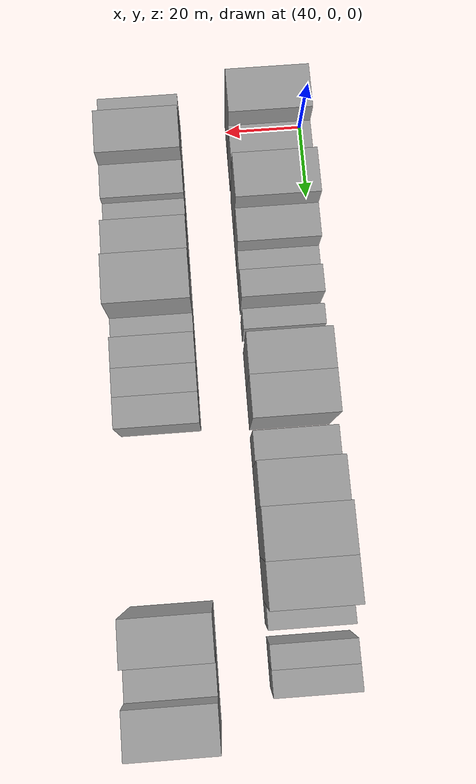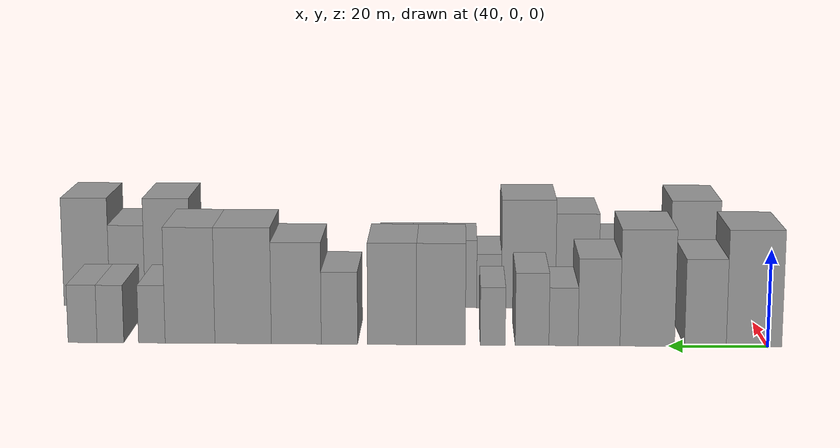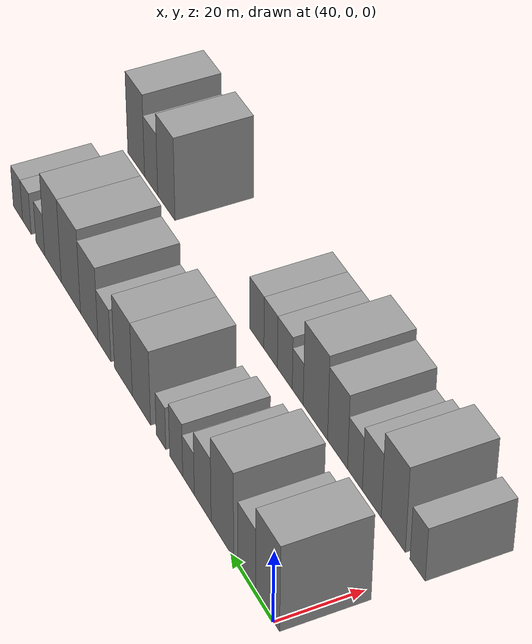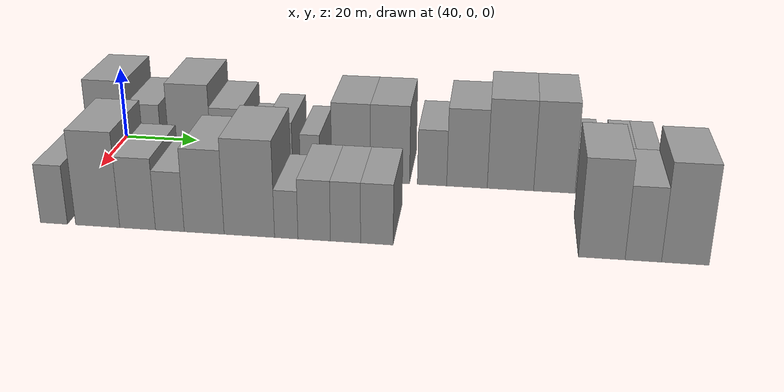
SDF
<sdf version="1.6">
 <world name="default">
  <model name="building_31">
   <static>1</static>
   <pose>50.0000 2.8149 0 0.000000 0.000000 0.000000</pose>
   <link name="link">
    <pose>0 0 12.00 0 0 0</pose>
    <collision name="collision"><geometry><box><size>20.0000 11.1670 24.0000</size></box></geometry></collision>
    <visual name="visual">
     <cast_shadows>0</cast_shadows>
     <geometry><box><size>20.0000 11.1670 24.0000</size></box></geometry>
     <material>
      <script>
       <uri>model://grey_wall/materials/scripts</uri>
       <uri>model://grey_wall/materials/textures</uri>
       <name>vrc/grey_wall</name>
      </script>
     </material>
    </visual>
   </link>
  </model>
  <model name="building_32">
   <static>1</static>
   <pose>50.0000 12.5977 0 0.000000 0.000000 0.000000</pose>
   <link name="link">
    <pose>0 0 9.00 0 0 0</pose>
    <collision name="collision"><geometry><box><size>20.0000 8.3987 18.0000</size></box></geometry></collision>
    <visual name="visual">
     <cast_shadows>0</cast_shadows>
     <geometry><box><size>20.0000 8.3987 18.0000</size></box></geometry>
     <material>
      <script>
       <uri>model://grey_wall/materials/scripts</uri>
       <uri>model://grey_wall/materials/textures</uri>
       <name>vrc/grey_wall</name>
      </script>
     </material>
    </visual>
   </link>
  </model>
  <model name="building_33">
   <static>1</static>
   <pose>50.0000 24.3071 0 0.000000 0.000000 0.000000</pose>
   <link name="link">
    <pose>0 0 12.00 0 0 0</pose>
    <collision name="collision"><geometry><box><size>20.0000 11.0200 24.0000</size></box></geometry></collision>
    <visual name="visual">
     <cast_shadows>0</cast_shadows>
     <geometry><box><size>20.0000 11.0200 24.0000</size></box></geometry>
     <material>
      <script>
       <uri>model://grey_wall/materials/scripts</uri>
       <uri>model://grey_wall/materials/textures</uri>
       <name>vrc/grey_wall</name>
      </script>
     </material>
    </visual>
   </link>
  </model>
  <model name="building_34">
   <static>1</static>
   <pose>50.0000 34.0459 0 0.000000 0.000000 0.000000</pose>
   <link name="link">
    <pose>0 0 9.00 0 0 0</pose>
    <collision name="collision"><geometry><box><size>20.0000 8.4576 18.0000</size></box></geometry></collision>
    <visual name="visual">
     <cast_shadows>0</cast_shadows>
     <geometry><box><size>20.0000 8.4576 18.0000</size></box></geometry>
     <material>
      <script>
       <uri>model://grey_wall/materials/scripts</uri>
       <uri>model://grey_wall/materials/textures</uri>
       <name>vrc/grey_wall</name>
      </script>
     </material>
    </visual>
   </link>
  </model>
  <model name="building_35">
   <static>1</static>
   <pose>50.0000 41.2181 0 0.000000 0.000000 0.000000</pose>
   <link name="link">
    <pose>0 0 6.00 0 0 0</pose>
    <collision name="collision"><geometry><box><size>20.0000 5.8868 12.0000</size></box></geometry></collision>
    <visual name="visual">
     <cast_shadows>0</cast_shadows>
     <geometry><box><size>20.0000 5.8868 12.0000</size></box></geometry>
     <material>
      <script>
       <uri>model://grey_wall/materials/scripts</uri>
       <uri>model://grey_wall/materials/textures</uri>
       <name>vrc/grey_wall</name>
      </script>
     </material>
    </visual>
   </link>
  </model>
  <model name="building_36">
   <static>1</static>
   <pose>50.0000 47.5665 0 0.000000 0.000000 0.000000</pose>
   <link name="link">
    <pose>0 0 7.50 0 0 0</pose>
    <collision name="collision"><geometry><box><size>20.0000 6.8100 15.0000</size></box></geometry></collision>
    <visual name="visual">
     <cast_shadows>0</cast_shadows>
     <geometry><box><size>20.0000 6.8100 15.0000</size></box></geometry>
     <material>
      <script>
       <uri>model://grey_wall/materials/scripts</uri>
       <uri>model://grey_wall/materials/textures</uri>
       <name>vrc/grey_wall</name>
      </script>
     </material>
    </visual>
   </link>
  </model>
  <model name="building_37">
   <static>1</static>
   <pose>50.0000 55.5154 0 0.000000 0.000000 0.000000</pose>
   <link name="link">
    <pose>0 0 6.00 0 0 0</pose>
    <collision name="collision"><geometry><box><size>20.0000 5.0878 12.0000</size></box></geometry></collision>
    <visual name="visual">
     <cast_shadows>0</cast_shadows>
     <geometry><box><size>20.0000 5.0878 12.0000</size></box></geometry>
     <material>
      <script>
       <uri>model://grey_wall/materials/scripts</uri>
       <uri>model://grey_wall/materials/textures</uri>
       <name>vrc/grey_wall</name>
      </script>
     </material>
    </visual>
   </link>
  </model>
  <model name="building_38">
   <static>1</static>
   <pose>50.0000 66.0061 0 0.000000 0.000000 0.000000</pose>
   <link name="link">
    <pose>0 0 10.50 0 0 0</pose>
    <collision name="collision"><geometry><box><size>20.0000 9.8937 21.0000</size></box></geometry></collision>
    <visual name="visual">
     <cast_shadows>0</cast_shadows>
     <geometry><box><size>20.0000 9.8937 21.0000</size></box></geometry>
     <material>
      <script>
       <uri>model://grey_wall/materials/scripts</uri>
       <uri>model://grey_wall/materials/textures</uri>
       <name>vrc/grey_wall</name>
      </script>
     </material>
    </visual>
   </link>
  </model>
  <model name="building_39">
   <static>1</static>
   <pose>50.0000 75.9395 0 0.000000 0.000000 0.000000</pose>
   <link name="link">
    <pose>0 0 10.50 0 0 0</pose>
    <collision name="collision"><geometry><box><size>20.0000 9.9730 21.0000</size></box></geometry></collision>
    <visual name="visual">
     <cast_shadows>0</cast_shadows>
     <geometry><box><size>20.0000 9.9730 21.0000</size></box></geometry>
     <material>
      <script>
       <uri>model://grey_wall/materials/scripts</uri>
       <uri>model://grey_wall/materials/textures</uri>
       <name>vrc/grey_wall</name>
      </script>
     </material>
    </visual>
   </link>
  </model>
  <model name="building_40">
   <static>1</static>
   <pose>50.0000 86.6181 0 0.000000 0.000000 0.000000</pose>
   <link name="link">
    <pose>0 0 7.50 0 0 0</pose>
    <collision name="collision"><geometry><box><size>20.0000 7.3843 15.0000</size></box></geometry></collision>
    <visual name="visual">
     <cast_shadows>0</cast_shadows>
     <geometry><box><size>20.0000 7.3843 15.0000</size></box></geometry>
     <material>
      <script>
       <uri>model://grey_wall/materials/scripts</uri>
       <uri>model://grey_wall/materials/textures</uri>
       <name>vrc/grey_wall</name>
      </script>
     </material>
    </visual>
   </link>
  </model>
  <model name="building_41">
   <static>1</static>
   <pose>50.0000 95.3826 0 0.000000 0.000000 0.000000</pose>
   <link name="link">
    <pose>0 0 10.50 0 0 0</pose>
    <collision name="collision"><geometry><box><size>20.0000 10.1447 21.0000</size></box></geometry></collision>
    <visual name="visual">
     <cast_shadows>0</cast_shadows>
     <geometry><box><size>20.0000 10.1447 21.0000</size></box></geometry>
     <material>
      <script>
       <uri>model://grey_wall/materials/scripts</uri>
       <uri>model://grey_wall/materials/textures</uri>
       <name>vrc/grey_wall</name>
      </script>
     </material>
    </visual>
   </link>
  </model>
  <model name="building_42">
   <static>1</static>
   <pose>50.0000 106.2034 0 0.000000 0.000000 0.000000</pose>
   <link name="link">
    <pose>0 0 12.00 0 0 0</pose>
    <collision name="collision"><geometry><box><size>20.0000 11.4968 24.0000</size></box></geometry></collision>
    <visual name="visual">
     <cast_shadows>0</cast_shadows>
     <geometry><box><size>20.0000 11.4968 24.0000</size></box></geometry>
     <material>
      <script>
       <uri>model://grey_wall/materials/scripts</uri>
       <uri>model://grey_wall/materials/textures</uri>
       <name>vrc/grey_wall</name>
      </script>
     </material>
    </visual>
   </link>
  </model>
  <model name="building_43">
   <static>1</static>
   <pose>50.0000 117.0278 0 0.000000 0.000000 0.000000</pose>
   <link name="link">
    <pose>0 0 12.00 0 0 0</pose>
    <collision name="collision"><geometry><box><size>20.0000 10.1520 24.0000</size></box></geometry></collision>
    <visual name="visual">
     <cast_shadows>0</cast_shadows>
     <geometry><box><size>20.0000 10.1520 24.0000</size></box></geometry>
     <material>
      <script>
       <uri>model://grey_wall/materials/scripts</uri>
       <uri>model://grey_wall/materials/textures</uri>
       <name>vrc/grey_wall</name>
      </script>
     </material>
    </visual>
   </link>
  </model>
  <model name="building_44">
   <static>1</static>
   <pose>50.0000 124.8269 0 0.000000 0.000000 0.000000</pose>
   <link name="link">
    <pose>0 0 6.00 0 0 0</pose>
    <collision name="collision"><geometry><box><size>20.0000 5.4463 12.0000</size></box></geometry></collision>
    <visual name="visual">
     <cast_shadows>0</cast_shadows>
     <geometry><box><size>20.0000 5.4463 12.0000</size></box></geometry>
     <material>
      <script>
       <uri>model://grey_wall/materials/scripts</uri>
       <uri>model://grey_wall/materials/textures</uri>
       <name>vrc/grey_wall</name>
      </script>
     </material>
    </visual>
   </link>
  </model>
  <model name="building_45">
   <static>1</static>
   <pose>50.0000 133.2887 0 0.000000 0.000000 0.000000</pose>
   <link name="link">
    <pose>0 0 6.00 0 0 0</pose>
    <collision name="collision"><geometry><box><size>20.0000 5.4773 12.0000</size></box></geometry></collision>
    <visual name="visual">
     <cast_shadows>0</cast_shadows>
     <geometry><box><size>20.0000 5.4773 12.0000</size></box></geometry>
     <material>
      <script>
       <uri>model://grey_wall/materials/scripts</uri>
       <uri>model://grey_wall/materials/textures</uri>
       <name>vrc/grey_wall</name>
      </script>
     </material>
    </visual>
   </link>
  </model>
  <model name="building_46">
   <static>1</static>
   <pose>50.0000 138.9892 0 0.000000 0.000000 0.000000</pose>
   <link name="link">
    <pose>0 0 6.00 0 0 0</pose>
    <collision name="collision"><geometry><box><size>20.0000 5.9235 12.0000</size></box></geometry></collision>
    <visual name="visual">
     <cast_shadows>0</cast_shadows>
     <geometry><box><size>20.0000 5.9235 12.0000</size></box></geometry>
     <material>
      <script>
       <uri>model://grey_wall/materials/scripts</uri>
       <uri>model://grey_wall/materials/textures</uri>
       <name>vrc/grey_wall</name>
      </script>
     </material>
    </visual>
   </link>
  </model>
  <model name="building_88">
   <static>1</static>
   <pose>82.0000 0.4182 0 0.000000 0.000000 0.000000</pose>
   <link name="link">
    <pose>0 0 7.50 0 0 0</pose>
    <collision name="collision"><geometry><box><size>20.0000 6.6098 15.0000</size></box></geometry></collision>
    <visual name="visual">
     <cast_shadows>0</cast_shadows>
     <geometry><box><size>20.0000 6.6098 15.0000</size></box></geometry>
     <material>
      <script>
       <uri>model://grey_wall/materials/scripts</uri>
       <uri>model://grey_wall/materials/textures</uri>
       <name>vrc/grey_wall</name>
      </script>
     </material>
    </visual>
   </link>
  </model>
  <model name="building_89">
   <static>1</static>
   <pose>82.0000 11.0711 0 0.000000 0.000000 0.000000</pose>
   <link name="link">
    <pose>0 0 12.00 0 0 0</pose>
    <collision name="collision"><geometry><box><size>20.0000 10.6960 24.0000</size></box></geometry></collision>
    <visual name="visual">
     <cast_shadows>0</cast_shadows>
     <geometry><box><size>20.0000 10.6960 24.0000</size></box></geometry>
     <material>
      <script>
       <uri>model://grey_wall/materials/scripts</uri>
       <uri>model://grey_wall/materials/textures</uri>
       <name>vrc/grey_wall</name>
      </script>
     </material>
    </visual>
   </link>
  </model>
  <model name="building_90">
   <static>1</static>
   <pose>82.0000 20.7036 0 0.000000 0.000000 0.000000</pose>
   <link name="link">
    <pose>0 0 9.00 0 0 0</pose>
    <collision name="collision"><geometry><box><size>20.0000 8.5691 18.0000</size></box></geometry></collision>
    <visual name="visual">
     <cast_shadows>0</cast_shadows>
     <geometry><box><size>20.0000 8.5691 18.0000</size></box></geometry>
     <material>
      <script>
       <uri>model://grey_wall/materials/scripts</uri>
       <uri>model://grey_wall/materials/textures</uri>
       <name>vrc/grey_wall</name>
      </script>
     </material>
    </visual>
   </link>
  </model>
  <model name="building_91">
   <static>1</static>
   <pose>82.0000 28.4125 0 0.000000 0.000000 0.000000</pose>
   <link name="link">
    <pose>0 0 7.50 0 0 0</pose>
    <collision name="collision"><geometry><box><size>20.0000 6.8486 15.0000</size></box></geometry></collision>
    <visual name="visual">
     <cast_shadows>0</cast_shadows>
     <geometry><box><size>20.0000 6.8486 15.0000</size></box></geometry>
     <material>
      <script>
       <uri>model://grey_wall/materials/scripts</uri>
       <uri>model://grey_wall/materials/textures</uri>
       <name>vrc/grey_wall</name>
      </script>
     </material>
    </visual>
   </link>
  </model>
  <model name="building_92">
   <static>1</static>
   <pose>82.0000 36.5526 0 0.000000 0.000000 0.000000</pose>
   <link name="link">
    <pose>0 0 10.50 0 0 0</pose>
    <collision name="collision"><geometry><box><size>20.0000 9.4316 21.0000</size></box></geometry></collision>
    <visual name="visual">
     <cast_shadows>0</cast_shadows>
     <geometry><box><size>20.0000 9.4316 21.0000</size></box></geometry>
     <material>
      <script>
       <uri>model://grey_wall/materials/scripts</uri>
       <uri>model://grey_wall/materials/textures</uri>
       <name>vrc/grey_wall</name>
      </script>
     </material>
    </visual>
   </link>
  </model>
  <model name="building_93">
   <static>1</static>
   <pose>82.0000 47.1672 0 0.000000 0.000000 0.000000</pose>
   <link name="link">
    <pose>0 0 12.00 0 0 0</pose>
    <collision name="collision"><geometry><box><size>20.0000 11.7976 24.0000</size></box></geometry></collision>
    <visual name="visual">
     <cast_shadows>0</cast_shadows>
     <geometry><box><size>20.0000 11.7976 24.0000</size></box></geometry>
     <material>
      <script>
       <uri>model://grey_wall/materials/scripts</uri>
       <uri>model://grey_wall/materials/textures</uri>
       <name>vrc/grey_wall</name>
      </script>
     </material>
    </visual>
   </link>
  </model>
  <model name="building_94">
   <static>1</static>
   <pose>82.0000 55.7799 0 0.000000 0.000000 0.000000</pose>
   <link name="link">
    <pose>0 0 6.00 0 0 0</pose>
    <collision name="collision"><geometry><box><size>20.0000 5.4279 12.0000</size></box></geometry></collision>
    <visual name="visual">
     <cast_shadows>0</cast_shadows>
     <geometry><box><size>20.0000 5.4279 12.0000</size></box></geometry>
     <material>
      <script>
       <uri>model://grey_wall/materials/scripts</uri>
       <uri>model://grey_wall/materials/textures</uri>
       <name>vrc/grey_wall</name>
      </script>
     </material>
    </visual>
   </link>
  </model>
  <model name="building_95">
   <static>1</static>
   <pose>82.0000 62.2298 0 0.000000 0.000000 0.000000</pose>
   <link name="link">
    <pose>0 0 7.50 0 0 0</pose>
    <collision name="collision"><geometry><box><size>20.0000 7.4717 15.0000</size></box></geometry></collision>
    <visual name="visual">
     <cast_shadows>0</cast_shadows>
     <geometry><box><size>20.0000 7.4717 15.0000</size></box></geometry>
     <material>
      <script>
       <uri>model://grey_wall/materials/scripts</uri>
       <uri>model://grey_wall/materials/textures</uri>
       <name>vrc/grey_wall</name>
      </script>
     </material>
    </visual>
   </link>
  </model>
  <model name="building_96">
   <static>1</static>
   <pose>82.0000 69.4104 0 0.000000 0.000000 0.000000</pose>
   <link name="link">
    <pose>0 0 7.50 0 0 0</pose>
    <collision name="collision"><geometry><box><size>20.0000 6.8896 15.0000</size></box></geometry></collision>
    <visual name="visual">
     <cast_shadows>0</cast_shadows>
     <geometry><box><size>20.0000 6.8896 15.0000</size></box></geometry>
     <material>
      <script>
       <uri>model://grey_wall/materials/scripts</uri>
       <uri>model://grey_wall/materials/textures</uri>
       <name>vrc/grey_wall</name>
      </script>
     </material>
    </visual>
   </link>
  </model>
  <model name="building_97">
   <static>1</static>
   <pose>82.0000 76.5579 0 0.000000 0.000000 0.000000</pose>
   <link name="link">
    <pose>0 0 7.50 0 0 0</pose>
    <collision name="collision"><geometry><box><size>20.0000 7.4055 15.0000</size></box></geometry></collision>
    <visual name="visual">
     <cast_shadows>0</cast_shadows>
     <geometry><box><size>20.0000 7.4055 15.0000</size></box></geometry>
     <material>
      <script>
       <uri>model://grey_wall/materials/scripts</uri>
       <uri>model://grey_wall/materials/textures</uri>
       <name>vrc/grey_wall</name>
      </script>
     </material>
    </visual>
   </link>
  </model>
  <model name="building_98">
   <static>1</static>
   <pose>82.0000 126.3773 0 0.000000 0.000000 0.000000</pose>
   <link name="link">
    <pose>0 0 12.00 0 0 0</pose>
    <collision name="collision"><geometry><box><size>20.0000 10.0778 24.0000</size></box></geometry></collision>
    <visual name="visual">
     <cast_shadows>0</cast_shadows>
     <geometry><box><size>20.0000 10.0778 24.0000</size></box></geometry>
     <material>
      <script>
       <uri>model://grey_wall/materials/scripts</uri>
       <uri>model://grey_wall/materials/textures</uri>
       <name>vrc/grey_wall</name>
      </script>
     </material>
    </visual>
   </link>
  </model>
  <model name="building_99">
   <static>1</static>
   <pose>82.0000 135.3152 0 0.000000 0.000000 0.000000</pose>
   <link name="link">
    <pose>0 0 9.00 0 0 0</pose>
    <collision name="collision"><geometry><box><size>20.0000 7.7981 18.0000</size></box></geometry></collision>
    <visual name="visual">
     <cast_shadows>0</cast_shadows>
     <geometry><box><size>20.0000 7.7981 18.0000</size></box></geometry>
     <material>
      <script>
       <uri>model://grey_wall/materials/scripts</uri>
       <uri>model://grey_wall/materials/textures</uri>
       <name>vrc/grey_wall</name>
      </script>
     </material>
    </visual>
   </link>
  </model>
  <model name="building_100">
   <static>1</static>
   <pose>82.0000 144.2691 0 0.000000 0.000000 0.000000</pose>
   <link name="link">
    <pose>0 0 12.00 0 0 0</pose>
    <collision name="collision"><geometry><box><size>20.0000 10.1096 24.0000</size></box></geometry></collision>
    <visual name="visual">
     <cast_shadows>0</cast_shadows>
     <geometry><box><size>20.0000 10.1096 24.0000</size></box></geometry>
     <material>
      <script>
       <uri>model://grey_wall/materials/scripts</uri>
       <uri>model://grey_wall/materials/textures</uri>
       <name>vrc/grey_wall</name>
      </script>
     </material>
    </visual>
   </link>
  </model>
 </world>
</sdf>
